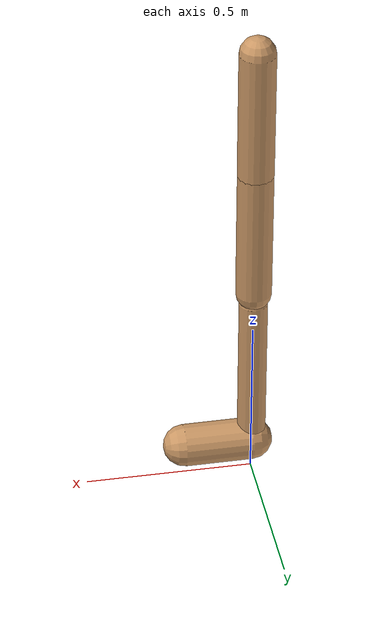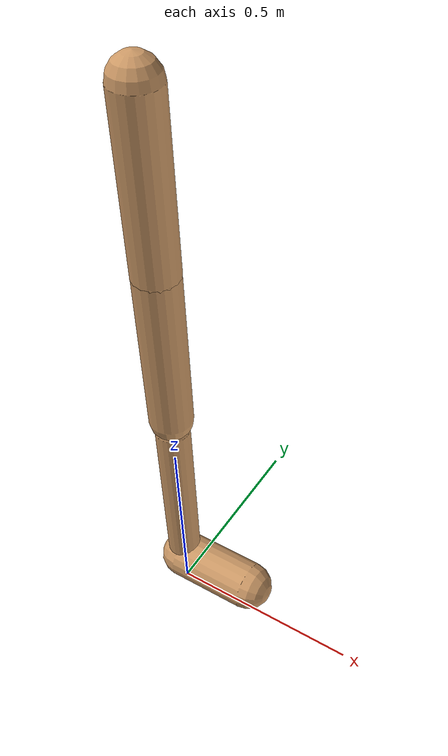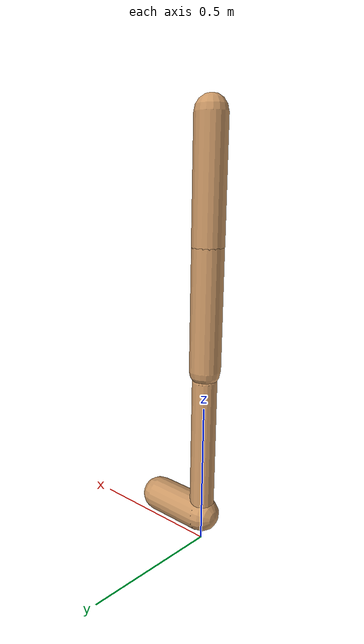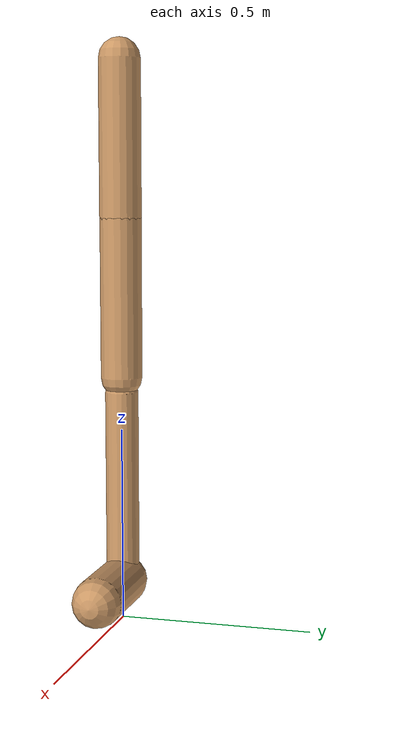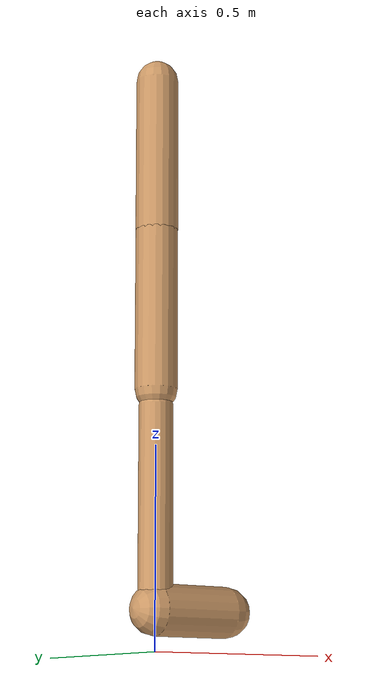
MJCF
<mujoco model="walker2d">
  <compiler angle="degree" coordinate="global" inertiafromgeom="true" />
  <default>
    <joint armature="0.01" damping=".1" limited="true" />
    <geom conaffinity="0" condim="3" contype="1" density="1000" friction="0.8 .1 .1" rgba="0.8 0.6 .4 1" />
  </default>
  <option integrator="RK4" timestep="0.002" />
  <worldbody>

    <body name="torso" pos="0 0 -0.08130724700208629">
      <joint armature="0" axis="1 0 0" damping="0" limited="false" name="ignorex" pos="0 0 0" stiffness="0" type="slide" />
      <joint armature="0" axis="0 0 1" damping="0" limited="false" name="ignorez" pos="0 0 0" ref="1.25" stiffness="0" type="slide" />
      <joint armature="0" axis="0 1 0" damping="0" limited="false" name="ignorey" pos="0 0 0" stiffness="0" type="hinge" />
      <geom fromto="0 0 1.45 0 0 1.05" name="torso_geom" size="0.05369493002858166" type="capsule" />
      <body name="thigh">
        <joint axis="0 -1 0" name="thigh_joint" pos="0 0 1.05" range="-150 0" type="hinge" />
        <geom fromto="0.0 0.0 1.05 0.0 0.0 0.6385139591062514" name="thigh_geom" size="0.05327290133374305" type="capsule" />
        <body name="leg" pos="0.0 0.0 0.03851395910625144">
          <joint axis="0 -1 0" name="leg_joint" pos="0 0 0.6" range="-150 0" type="hinge" />
          <geom fromto="0.0 0.0 0.6 0.0 0.0 0.1427932878958349" name="leg_geom" size="0.04261832106699444" type="capsule" />
          <body name="foot" pos="0.0 0.0 0.04279328789583489">
            <joint axis="0 -1 0" name="foot_joint" pos="0 0 0.1" range="-45 45" type="hinge" />
            <geom fromto="-0.0 0.0 0.09999999999999999 0.20470927852103432 0.0 0.09999999999999999" name="foot_geom" size="0.06331144219113288" type="capsule" />
          </body>
        </body>
      </body>

      <body name="thigh_left">
        <joint axis="0 -1 0" name="thigh_left_joint" pos="0 0 1.05" range="-150 0" type="hinge" />
        <geom fromto="0.0 0.0 1.05 0.0 0.0 0.6385139591062514" name="thigh_left_geom" rgba=".7 .3 .6 1" size="0.05327290133374305" type="capsule" />
        <body name="leg_left" pos="0.0 0.0 0.03851395910625144">
          <joint axis="0 -1 0" name="leg_left_joint" pos="0 0 0.6" range="-150 0" type="hinge" />
          <geom fromto="0.0 0.0 0.6 0.0 0.0 0.1427932878958349" name="leg_left_geom" rgba=".7 .3 .6 1" size="0.04261832106699444" type="capsule" />
          <body name="foot_left" pos="0.0 0.0 0.04279328789583489">
            <joint axis="0 -1 0" name="foot_left_joint" pos="0 0 0.1" range="-45 45" type="hinge" />
            <geom fromto="-0.0 0.0 0.09999999999999999 0.20470927852103432 0.0 0.09999999999999999" name="foot_left_geom" rgba=".7 .3 .6 1" size="0.06331144219113288" type="capsule" />
          </body>
        </body>
      </body>
    </body>
  </worldbody>
  <actuator>

    <motor ctrllimited="true" ctrlrange="-1.0 1.0" gear="100" joint="thigh_joint" />
    <motor ctrllimited="true" ctrlrange="-1.0 1.0" gear="100" joint="leg_joint" />
    <motor ctrllimited="true" ctrlrange="-1.0 1.0" gear="100" joint="foot_joint" />
    <motor ctrllimited="true" ctrlrange="-1.0 1.0" gear="100" joint="thigh_left_joint" />
    <motor ctrllimited="true" ctrlrange="-1.0 1.0" gear="100" joint="leg_left_joint" />
    <motor ctrllimited="true" ctrlrange="-1.0 1.0" gear="100" joint="foot_left_joint" />

  </actuator>
</mujoco>
